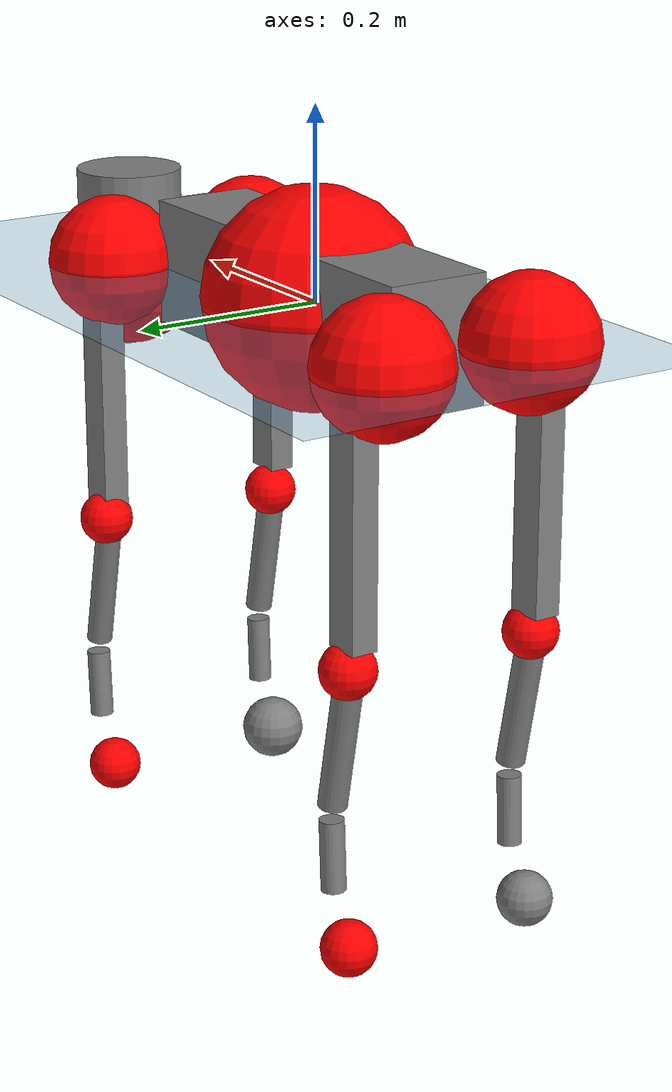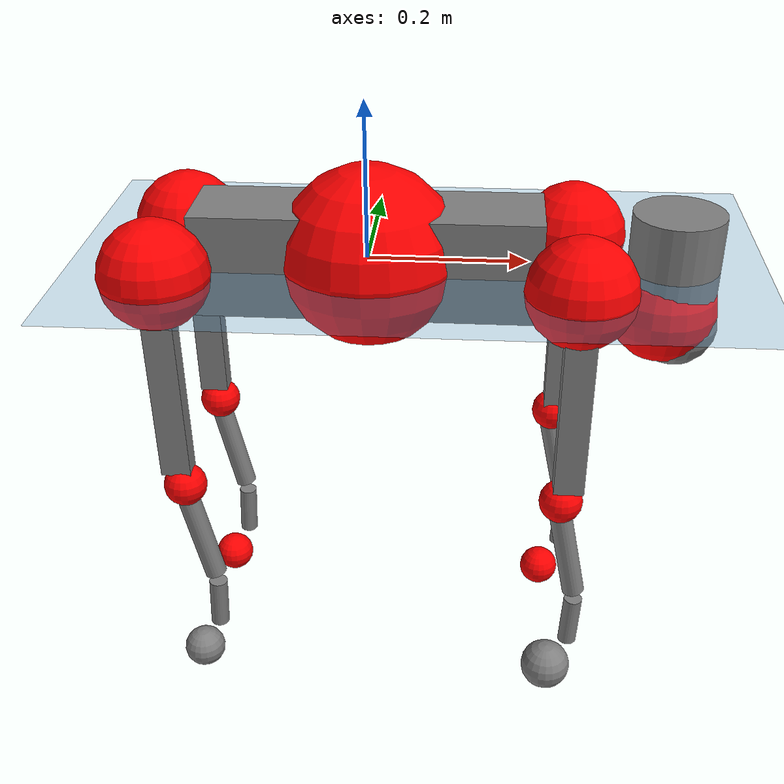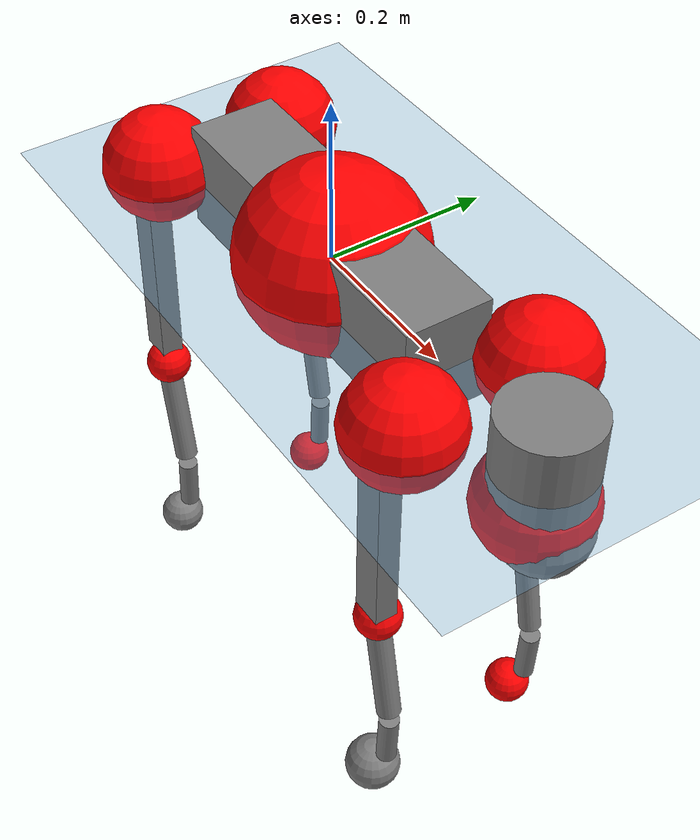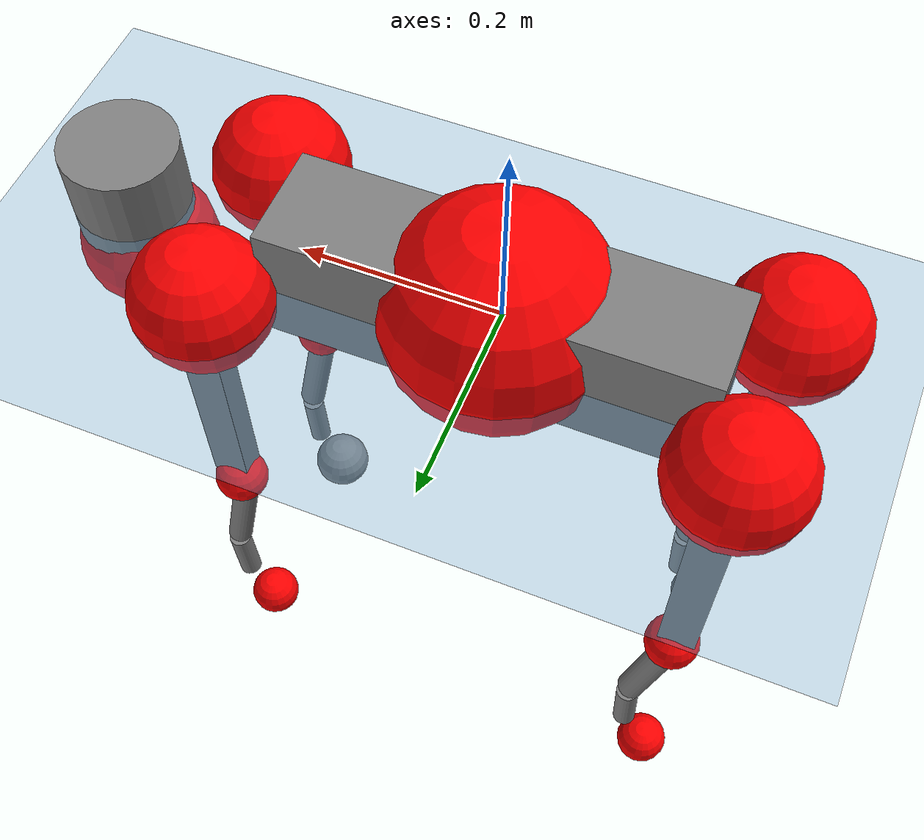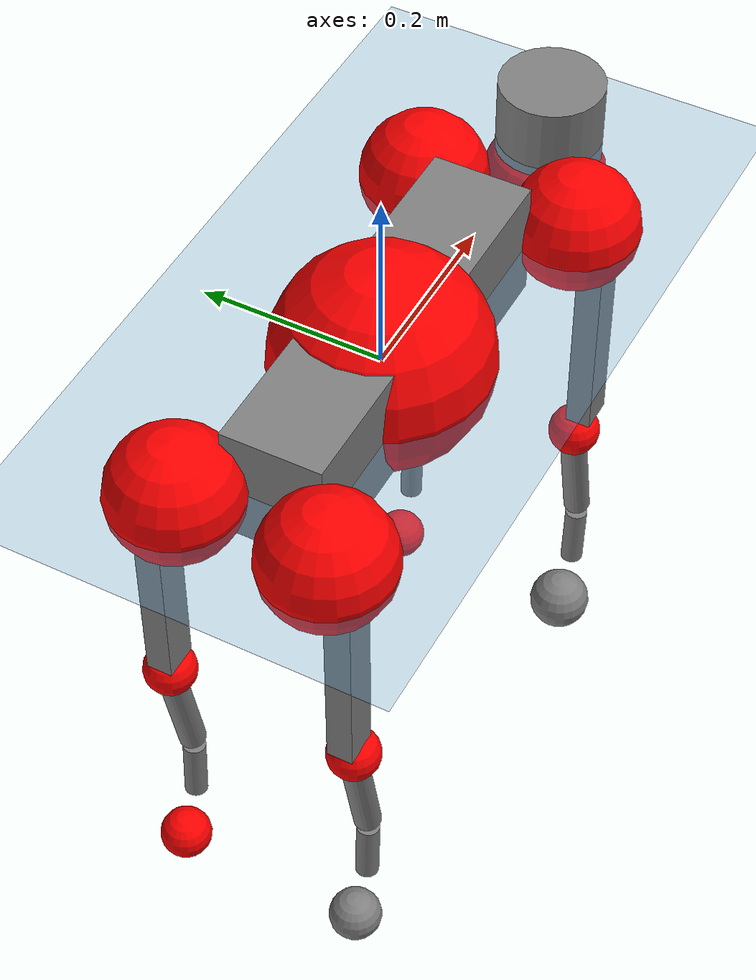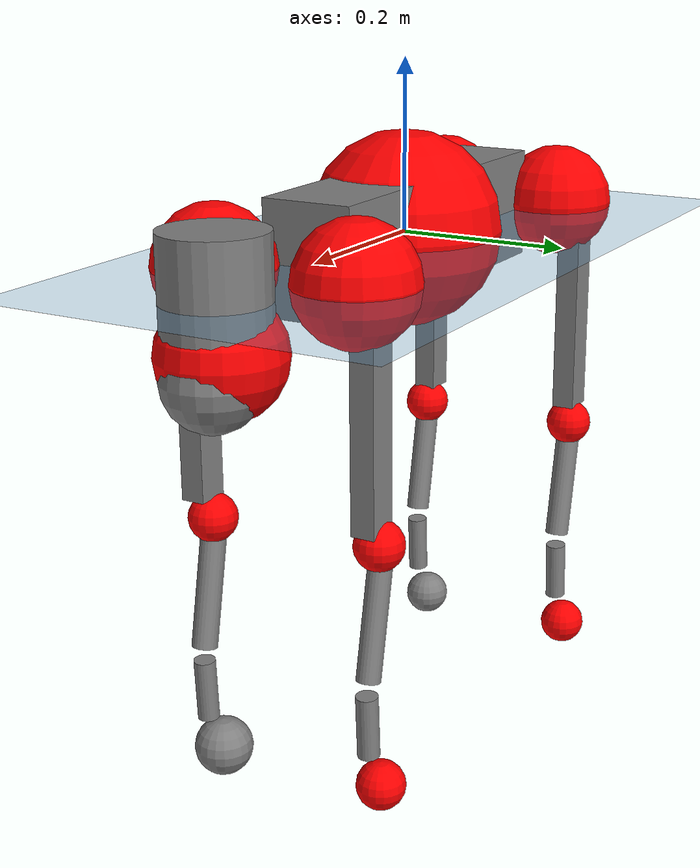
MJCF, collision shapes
<mujoco model="go2">
  <compiler angle="radian" assetdir="assets" balanceinertia="true" inertiafromgeom="false"/>

  <option timestep="0.005" density="1.2" viscosity="2e-05"/>

  <size nkey="1"/>

  <visual>
    <quality shadowsize="8192"/>
    <map shadowclip="0.5"/>
  </visual>

  <default>
    <default class="/">
      <geom contype="0" conaffinity="0" group="1" solref="-1000 -80"/>
      <site size="0.01 0.005 0.005" group="5"/>
      <general forcelimited="true" biastype="affine" gainprm="20" biasprm="0 -20 -0.5"/>
      <default class="go2">
        <joint armature="0.01" damping="0.01" frictionloss="0.2"/>
        <geom condim="1" margin="0.001"/>
        <default class="visual">
          <geom type="mesh" group="2"/>
        </default>
        <default class="collision">
          <geom group="3"/>
          <default class="foot">
            <geom size="0.022 0 0" condim="6" priority="1" friction="0.8 0.02 0.01" solimp="0.015 1 0.022"/>
          </default>
        </default>
        <default class="reward_collision_sphere">
          <geom group="5" rgba="1 0 0 1"/>
        </default>
      </default>
    </default>
  </default>

  <asset>
    <texture type="skybox" colorspace="auto" name="//unnamed_texture_0" builtin="gradient" rgb1="0.95 0.95 0.95" rgb2="0.95 0.95 0.95" width="100" height="600"/>
    <texture type="2d" colorspace="auto" name="texplane" builtin="checker" rgb1="0.345 0.575 0.748" rgb2="0.345 0.575 0.748" markrgb="1 1 1" width="512" height="512"/>
    <material name="MatPlane" class="/" texture="texplane" texuniform="true" texrepeat="2 2" specular="0.9"/>
    <material name="metal" class="/" rgba="0.9 0.95 0.95 1"/>
    <material name="black" class="/" rgba="0 0 0 1"/>
    <material name="white" class="/"/>
    <material name="gray" class="/" rgba="0.671705 0.692426 0.77427 1"/>
    <mesh name="base_0" class="/" file="base_0.obj"/>
    <mesh name="base_1" class="/" file="base_1.obj"/>
    <mesh name="base_2" class="/" file="base_2.obj"/>
    <mesh name="base_3" class="/" file="base_3.obj"/>
    <mesh name="base_4" class="/" file="base_4.obj"/>
    <mesh name="hip_0" class="/" file="hip_0.obj"/>
    <mesh name="hip_1" class="/" file="hip_1.obj"/>
    <mesh name="thigh_0" class="/" file="thigh_0.obj"/>
    <mesh name="thigh_1" class="/" file="thigh_1.obj"/>
    <mesh name="thigh_mirror_0" class="/" file="thigh_mirror_0.obj"/>
    <mesh name="thigh_mirror_1" class="/" file="thigh_mirror_1.obj"/>
    <mesh name="calf_0" class="/" file="calf_0.obj"/>
    <mesh name="calf_1" class="/" file="calf_1.obj"/>
    <mesh name="calf_mirror_0" class="/" file="calf_mirror_0.obj"/>
    <mesh name="calf_mirror_1" class="/" file="calf_mirror_1.obj"/>
    <mesh name="foot" class="/" file="foot.obj"/>
  </asset>

  <worldbody>
    <geom name="floor" class="/" size="100 100 0.125" type="plane" group="0" material="MatPlane"/>
    <light name="toplight_shadow" class="/" pos="0 0 5" dir="0.0990148 0.0990148 -0.990148" type="directional" ambient="0.04 0.04 0.04" diffuse="0.55 0.55 0.55" specular="0.12 0.12 0.12"/>
    <light name="toplight_fill" class="/" pos="0 0 5" dir="0.0990148 0.0990148 -0.990148" type="directional" castshadow="false" ambient="0.04 0.04 0.04" diffuse="0.3 0.3 0.3" specular="0.08 0.08 0.08"/>
    <body name="trunk" childclass="go2" pos="0.0020245 0.000337348 0.00436886" quat="1 -0.00076849 0.000532616 0.000261814">
      <inertial pos="0.0334622 0.00703848 -0.00872743" quat="-0.00211991 0.712545 -0.00186295 0.701621" mass="10.6454" diaginertia="0.39514 0.0199693 0.107351"/>
      <joint name="//unnamed_joint_0" type="free" armature="0" damping="0" frictionloss="0"/>
      <geom name="//unnamed_geom_1" class="visual" material="black" mesh="base_0"/>
      <geom name="//unnamed_geom_2" class="visual" material="black" mesh="base_1"/>
      <geom name="//unnamed_geom_3" class="visual" material="black" mesh="base_2"/>
      <geom name="//unnamed_geom_4" class="visual" material="white" mesh="base_3"/>
      <geom name="//unnamed_geom_5" class="visual" material="gray" mesh="base_4"/>
      <geom name="trunk_1" class="collision" size="0.216002 0.0536846 0.0654551" type="box"/>
      <geom name="trunk_2" class="collision" size="0.0574167 0.0516751" pos="0.378496 0 0.0137612" type="cylinder"/>
      <geom name="trunk_3" class="collision" size="0.0539717" pos="0.389121 0 -0.0825674"/>
      <geom name="//unnamed_geom_9" class="reward_collision_sphere" size="0.114833"/>
      <geom name="//unnamed_geom_10" class="reward_collision_sphere" size="0.0689001" pos="0.371856 0 -0.0619256"/>
      <site name="imu" pos="0.0114007 -0.00882754 0.0235456" size="0.0114833"/>
      <camera name="track" pos="0 -1.48165 0" quat="0.707107 0.707107 0 0" mode="trackcom"/>
      <camera name="ego_camera" pos="0.414354 0 0.0619256" quat="-0.5 -0.5 0.5 0.5"/>
      <body name="FL_hip" pos="0.258216 0.0352273 -0.00282431" quat="0.999999 -0.000409364 0.000964789 -0.000740117">
        <inertial pos="-0.0143338 0.00369798 -0.00276667" quat="0.486962 0.493499 0.513293 0.505823" mass="1.09645" diaginertia="0.00391785 0.000128059 0.00230887"/>
        <joint name="FL_hip_joint" pos="0 0 0" axis="0.999677 0.0184908 -0.0174402" range="-1.09606 0.992671" armature="0.00676706" damping="0.0489113" frictionloss="0.213631"/>
        <geom name="//unnamed_geom_11" class="visual" material="metal" mesh="hip_0"/>
        <geom name="//unnamed_geom_12" class="visual" material="gray" mesh="hip_1"/>
        <geom name="//unnamed_geom_13" class="collision" size="0.0528234 0.0229667" pos="0 0.0592658 0" quat="0.707107 0.707107 0 0" type="cylinder"/>
        <geom name="//unnamed_geom_14" class="reward_collision_sphere" size="0.0689001" pos="0 0.0518576 0"/>
        <body name="FL_thigh" pos="-0.0013156 0.0670432 -0.000118247" quat="0.999998 -0.000286014 -0.000928763 0.00149573">
          <inertial pos="-0.00620739 -0.01696 -0.0524433" quat="0.829611 0.086325 -0.0210374 0.551227" mass="1.71321" diaginertia="0.027566 0.00133969 0.00436642"/>
          <joint name="FL_thigh_joint" pos="0 0 0" axis="-0.013627 0.999042 0.0415881" stiffness="0.00205159" range="-1.58362 3.52257" armature="0.0123034" damping="0.00924012" frictionloss="0.309351"/>
          <geom name="//unnamed_geom_15" class="visual" material="metal" mesh="thigh_0"/>
          <geom name="//unnamed_geom_16" class="visual" material="gray" mesh="thigh_1"/>
          <geom name="//unnamed_geom_17" class="collision" size="0.122298 0.0140671 0.0195217" pos="0 0 -0.146557" quat="0.707107 0 0.707107 0" type="box"/>
          <body name="FL_calf" pos="-0.00590519 0.00615344 -0.284083" quat="0.999996 -6.09997e-05 -0.000345775 0.00292629">
            <inertial pos="0.00748622 -0.000440795 -0.195206" quat="0.712365 0.00325186 -0.00467521 0.701786" mass="0.368549" diaginertia="0.00634799 0.000329134 0.000267337"/>
            <joint name="FL_calf_joint" pos="0 0 0" axis="-0.0753935 0.996557 0.0344836" range="-2.6437 -0.855376" armature="0.0103397" damping="0.0400557" frictionloss="0.188207"/>
            <geom name="//unnamed_geom_18" class="visual" material="gray" mesh="calf_0"/>
            <geom name="//unnamed_geom_19" class="visual" material="black" mesh="calf_1"/>
            <geom name="FL_calf0" class="collision" size="0.01378 0.0689001" pos="0.0106245 0 -0.0825674" quat="0.994493 0 -0.104807 0" type="cylinder"/>
            <geom name="//unnamed_geom_21" class="collision" size="0.0126317 0.0373209" pos="0.0265611 0 -0.203666" quat="0.999688 0 0.0249974 0" type="cylinder"/>
            <geom name="//unnamed_geom_22" class="visual" pos="0 0 -0.293114" quat="1 0 0 0" material="black" mesh="foot"/>
            <geom name="FL_foot" class="foot" size="0.021228" pos="-0.00265611 0 -0.293114"/>
            <geom name="//unnamed_geom_24" class="reward_collision_sphere" size="0.0287084"/>
            <geom name="//unnamed_geom_25" class="reward_collision_sphere" size="0.0287084" pos="-0.00265611 0 -0.293114"/>
            <site name="FL_foot" class="foot" pos="-0.00265611 0 -0.293114" size="0.0114833"/>
          </body>
        </body>
      </body>
      <body name="FR_hip" pos="0.260626 -0.0339566 -0.00301502" quat="1 1.48626e-05 -2.15884e-05 -4.45274e-05">
        <inertial pos="-0.0139585 -0.0031217 0.00168773" quat="0.494297 0.509923 0.500056 0.495573" mass="0.973367" diaginertia="0.00355734 0.000122582 0.00224708"/>
        <joint name="FR_hip_joint" pos="0 0 0" axis="0.999986 0.00454494 0.00282742" stiffness="0.00238518" range="-0.900566 1.07862" armature="0.0151869" damping="0" frictionloss="0.310802"/>
        <geom name="//unnamed_geom_26" class="visual" pos="0 -5.53448e-09 -2.37385e-07" quat="4.63268e-05 1 0 0" material="metal" mesh="hip_0"/>
        <geom name="//unnamed_geom_27" class="visual" pos="0 -8.97206e-09 5.87145e-07" quat="4.63268e-05 1 0 0" material="gray" mesh="hip_1"/>
        <geom name="//unnamed_geom_28" class="collision" size="0.0528234 0.0229667" pos="0 -0.0592658 0" quat="0.707107 0.707107 0 0" type="cylinder"/>
        <geom name="//unnamed_geom_29" class="reward_collision_sphere" size="0.0689001" pos="0 -0.0518576 0"/>
        <body name="FR_thigh" pos="0.00141464 -0.07871 0.00234658" quat="1 -6.46513e-05 -9.65121e-05 0.000247824">
          <inertial pos="-0.00522137 0.0181649 -0.0470807" quat="0.578477 -0.0253897 0.0840361 0.810961" mass="2.04496" diaginertia="0.0268522 0.0013258 0.0045191"/>
          <joint name="FR_thigh_joint" pos="0 0 0" axis="-0.0255121 -0.999621 -0.0103464" stiffness="0.0137352" range="-3.66845 1.49058" armature="0.0114877" damping="0.0326972" frictionloss="0.114017"/>
          <geom name="//unnamed_geom_30" class="visual" material="metal" mesh="thigh_mirror_0"/>
          <geom name="//unnamed_geom_31" class="visual" material="gray" mesh="thigh_mirror_1"/>
          <geom name="//unnamed_geom_32" class="collision" size="0.122298 0.0140671 0.0195217" pos="0 0 -0.146557" quat="0.707107 0 0.707107 0" type="box"/>
          <body name="FR_calf" pos="-0.00695254 0.00787024 -0.294324" quat="1 0.000823324 -0.000243427 0.000347698">
            <inertial pos="0.00788166 -0.00136007 -0.202352" quat="0.703692 -0.0106058 0.0153107 0.710261" mass="0.360449" diaginertia="0.00687997 0.000352476 0.000270684"/>
            <joint name="FR_calf_joint" pos="0 0 0" axis="0.0122562 -0.999892 -0.00810164" stiffness="0.0060684" range="0.90079 2.64915" armature="0.0115454" damping="0.0139773" frictionloss="0.326805"/>
            <geom name="//unnamed_geom_33" class="visual" material="gray" mesh="calf_mirror_0"/>
            <geom name="//unnamed_geom_34" class="visual" material="black" mesh="calf_mirror_1"/>
            <geom name="FR_calf0" class="collision" size="0.0149283 0.0689001" pos="0.0132806 0 -0.0825674" quat="0.995004 0 -0.0998334 0" type="cylinder"/>
            <geom name="//unnamed_geom_36" class="collision" size="0.0126317 0.0373209" pos="0.0265611 0 -0.203666" quat="0.999688 0 0.0249974 0" type="cylinder"/>
            <geom name="//unnamed_geom_37" class="visual" pos="0 0 -0.293114" quat="1 0 0 0" material="black" mesh="foot"/>
            <geom name="FR_foot" class="foot" size="0.03473" pos="-0.00265611 0 -0.293114"/>
            <geom name="//unnamed_geom_39" class="reward_collision_sphere" size="0.0287084"/>
            <geom name="//unnamed_geom_40" class="reward_collision_sphere" size="0.0287084" pos="-0.00265611 0 -0.293114"/>
            <site name="FR_foot" class="foot" pos="-0.00265611 0 -0.293114" size="0.0114833"/>
          </body>
        </body>
      </body>
      <body name="RL_hip" pos="-0.248062 0.0330803 0.000933074" quat="1 -0.00015353 2.00629e-06 -0.000156794">
        <inertial pos="0.00551391 -0.00602777 0.00235019" quat="0.497543 0.511245 0.490188 0.500795" mass="1.03905" diaginertia="0.00396564 0.00012823 0.00278053"/>
        <joint name="RL_hip_joint" pos="0 0 0" axis="-0.999997 0.000796702 0.0022003" stiffness="0.0034169" range="-1.06091 1.24817" armature="0.0159832" damping="0.0213172" frictionloss="0.208312"/>
        <geom name="//unnamed_geom_41" class="visual" pos="4.18744e-10 0 8.20836e-08" quat="4.63268e-05 0 1 0" material="metal" mesh="hip_0"/>
        <geom name="//unnamed_geom_42" class="visual" pos="6.78835e-10 0 7.27965e-08" quat="4.63268e-05 0 1 0" material="gray" mesh="hip_1"/>
        <geom name="//unnamed_geom_43" class="collision" size="0.0528234 0.0229667" pos="0 0.0592658 0" quat="0.707107 0.707107 0 0" type="cylinder"/>
        <geom name="//unnamed_geom_44" class="reward_collision_sphere" size="0.0689001" pos="0 0.0518576 0"/>
        <body name="RL_thigh" pos="0.00368468 0.0805799 -0.000582509" quat="1 4.37101e-05 3.15171e-05 -2.51271e-05">
          <inertial pos="-0.00491853 -0.0223686 -0.0466274" quat="0.827497 0.0791015 -0.0129145 0.55572" mass="1.75363" diaginertia="0.0247696 0.00135675 0.00434058"/>
          <joint name="RL_thigh_joint" pos="0 0 0" axis="-0.0237739 0.999498 0.0209544" range="-0.497668 4.49448" armature="0.0127505" damping="0.0171942" frictionloss="0.224066"/>
          <geom name="//unnamed_geom_45" class="visual" material="metal" mesh="thigh_0"/>
          <geom name="//unnamed_geom_46" class="visual" material="gray" mesh="thigh_1"/>
          <geom name="//unnamed_geom_47" class="collision" size="0.122298 0.0140671 0.0195217" pos="0 0 -0.146557" quat="0.707107 0 0.707107 0" type="box"/>
          <body name="RL_calf" pos="0.00377944 0.00300699 -0.292375" quat="1 -5.24702e-07 0.000534009 -3.62462e-05">
            <inertial pos="0.00848604 -0.000175036 -0.196777" quat="0.730679 -0.00650678 -0.0432799 0.681317" mass="0.369201" diaginertia="0.0063571 0.00033664 0.000294371"/>
            <joint name="RL_calf_joint" pos="0 0 0" axis="-0.0225292 0.999686 -0.0109276" stiffness="0.00711" range="-2.72254 -0.82879" armature="0.014266" damping="0" frictionloss="0.18517"/>
            <geom name="//unnamed_geom_48" class="visual" material="gray" mesh="calf_0"/>
            <geom name="//unnamed_geom_49" class="visual" material="black" mesh="calf_1"/>
            <geom name="RL_calf0" class="collision" size="0.0149283 0.0689001" pos="0.0132806 0 -0.0825674" quat="0.995004 0 -0.0998334 0" type="cylinder"/>
            <geom name="//unnamed_geom_51" class="collision" size="0.0126317 0.0373209" pos="0.0265611 0 -0.203666" quat="0.999688 0 0.0249974 0" type="cylinder"/>
            <geom name="//unnamed_geom_52" class="visual" pos="0 0 -0.293114" quat="1 0 0 0" material="black" mesh="foot"/>
            <geom name="RL_foot" class="foot" size="0.0155709" pos="-0.00265611 0 -0.293114"/>
            <geom name="//unnamed_geom_54" class="reward_collision_sphere" size="0.0287084"/>
            <geom name="//unnamed_geom_55" class="reward_collision_sphere" size="0.0287084" pos="-0.00265611 0 -0.293114"/>
            <site name="RL_foot" class="foot" pos="-0.00265611 0 -0.293114" size="0.0114833"/>
          </body>
        </body>
      </body>
      <body name="RR_hip" pos="-0.25403 -0.0269922 0.00180636" quat="0.999996 0.000781357 1.53847e-05 0.00255615">
        <inertial pos="0.0148622 -0.00284108 -0.00671786" quat="0.49795 0.498617 0.497898 0.505494" mass="1.04742" diaginertia="0.00377965 0.000137422 0.00269118"/>
        <joint name="RR_hip_joint" pos="0 0 0" axis="-0.999998 0.000228602 -0.00206031" stiffness="0.0105446" range="-0.921992 0.87033" armature="0.0118885" damping="0.0310551" frictionloss="0.231643"/>
        <geom name="//unnamed_geom_56" class="visual" pos="-4.39075e-10 -5.53448e-09 3.19469e-07" quat="2.14617e-09 4.63268e-05 4.63268e-05 -1" material="metal" mesh="hip_0"/>
        <geom name="//unnamed_geom_57" class="visual" pos="-6.2855e-10 -8.97206e-09 -5.14349e-07" quat="2.14617e-09 4.63268e-05 4.63268e-05 -1" material="gray" mesh="hip_1"/>
        <geom name="//unnamed_geom_58" class="collision" size="0.0528234 0.0229667" pos="0 -0.0592658 0" quat="0.707107 0.707107 0 0" type="cylinder"/>
        <geom name="//unnamed_geom_59" class="reward_collision_sphere" size="0.0689001" pos="0 -0.0518576 0"/>
        <body name="RR_thigh" pos="0.00307408 -0.0687641 -0.00772304" quat="1 -0.000522936 0.000185173 -0.000564961">
          <inertial pos="-0.00952463 0.0155826 -0.0435962" quat="0.551942 -0.0180898 0.0837128 0.829473" mass="2.16492" diaginertia="0.0297627 0.00149333 0.00492108"/>
          <joint name="RR_thigh_joint" pos="0 0 0" axis="-0.0018653 -0.999575 -0.0290983" range="-4.50369 0.522679" armature="0.0120783" damping="0.00620841" frictionloss="0.235546"/>
          <geom name="//unnamed_geom_60" class="visual" material="metal" mesh="thigh_mirror_0"/>
          <geom name="//unnamed_geom_61" class="visual" material="gray" mesh="thigh_mirror_1"/>
          <geom name="//unnamed_geom_62" class="collision" size="0.122298 0.0140671 0.0195217" pos="0 0 -0.146557" quat="0.707107 0 0.707107 0" type="box"/>
          <body name="RR_calf" pos="0.00741443 -0.00122573 -0.291149" quat="0.999999 -0.000101294 -0.000572844 -0.000847886">
            <inertial pos="0.00926678 0.00115227 -0.192833" quat="0.718518 -0.0271929 0.000971638 0.694976" mass="0.383723" diaginertia="0.00653471 0.000309556 0.000275197"/>
            <joint name="RR_calf_joint" pos="0 0 0" axis="-0.0207513 -0.99977 0.00549653" range="0.815206 2.72421" armature="0.0163859" damping="0.0112257" frictionloss="0.227591"/>
            <geom name="//unnamed_geom_63" class="visual" material="gray" mesh="calf_mirror_0"/>
            <geom name="//unnamed_geom_64" class="visual" material="black" mesh="calf_mirror_1"/>
            <geom name="RR_calf0" class="collision" size="0.0149283 0.0689001" pos="0.0132806 0 -0.0825674" quat="0.995004 0 -0.0998334 0" type="cylinder"/>
            <geom name="//unnamed_geom_66" class="collision" size="0.0126317 0.0373209" pos="0.0265611 0 -0.203666" quat="0.999688 0 0.0249974 0" type="cylinder"/>
            <geom name="//unnamed_geom_67" class="visual" pos="0 0 -0.293114" quat="1 0 0 0" material="black" mesh="foot"/>
            <geom name="RR_foot" class="foot" size="0.0288855" pos="-0.00265611 0 -0.293114"/>
            <geom name="//unnamed_geom_69" class="reward_collision_sphere" size="0.0287084"/>
            <geom name="//unnamed_geom_70" class="reward_collision_sphere" size="0.0287084" pos="-0.00265611 0 -0.293114"/>
            <site name="RR_foot" class="foot" pos="-0.00265611 0 -0.293114" size="0.0114833"/>
          </body>
        </body>
      </body>
    </body>
  </worldbody>

  <contact>
    <pair class="/" geom1="floor" geom2="FL_foot" name="//unnamed_contact_0"/>
    <pair class="/" geom1="floor" geom2="FR_foot" name="//unnamed_contact_1"/>
    <pair class="/" geom1="floor" geom2="RL_foot" name="//unnamed_contact_2"/>
    <pair class="/" geom1="floor" geom2="RR_foot" name="//unnamed_contact_3"/>
  </contact>

  <actuator>
    <general name="FL_hip" class="/" joint="FL_hip_joint" forcerange="-25.6064 25.6064" gainprm="23.698" biasprm="0 -23.698 -0.56178"/>
    <general name="FL_thigh" class="/" joint="FL_thigh_joint" forcerange="-30.1896 30.1896" gainprm="23.698" biasprm="0 -23.698 -0.56178"/>
    <general name="FL_calf" class="/" joint="FL_calf_joint" forcerange="-50.7712 50.7712" gainprm="23.698" biasprm="0 -23.698 -0.56178"/>
    <general name="FR_hip" class="/" joint="FR_hip_joint" forcerange="-30.7401 30.7401" gainprm="23.698" biasprm="0 -23.698 -0.56178"/>
    <general name="FR_thigh" class="/" joint="FR_thigh_joint" forcerange="-25.4619 25.4619" gainprm="23.698" biasprm="0 -23.698 -0.56178"/>
    <general name="FR_calf" class="/" joint="FR_calf_joint" forcerange="-65.2752 65.2752" gainprm="23.698" biasprm="0 -23.698 -0.56178"/>
    <general name="RL_hip" class="/" joint="RL_hip_joint" forcerange="-27.1847 27.1847" gainprm="23.698" biasprm="0 -23.698 -0.56178"/>
    <general name="RL_thigh" class="/" joint="RL_thigh_joint" forcerange="-34.3308 34.3308" gainprm="23.698" biasprm="0 -23.698 -0.56178"/>
    <general name="RL_calf" class="/" joint="RL_calf_joint" forcerange="-50.5866 50.5866" gainprm="23.698" biasprm="0 -23.698 -0.56178"/>
    <general name="RR_hip" class="/" joint="RR_hip_joint" forcerange="-27.4653 27.4653" gainprm="23.698" biasprm="0 -23.698 -0.56178"/>
    <general name="RR_thigh" class="/" joint="RR_thigh_joint" forcerange="-35.7155 35.7155" gainprm="23.698" biasprm="0 -23.698 -0.56178"/>
    <general name="RR_calf" class="/" joint="RR_calf_joint" forcerange="-40.0884 40.0884" gainprm="23.698" biasprm="0 -23.698 -0.56178"/>
  </actuator>

  <sensor>
    <gyro site="imu" name="imu_angular_velocity"/>
    <velocimeter site="imu" name="imu_linear_velocity"/>
    <framelinvel objtype="site" objname="FL_foot" name="FL_foot_global_linear_velocity"/>
    <framelinvel objtype="site" objname="FR_foot" name="FR_foot_global_linear_velocity"/>
    <framelinvel objtype="site" objname="RL_foot" name="RL_foot_global_linear_velocity"/>
    <framelinvel objtype="site" objname="RR_foot" name="RR_foot_global_linear_velocity"/>
  </sensor>

  <keyframe>
    <key name="home" qpos="0 0 0.325 1 0 0 0 0.1 0.8 -1.5 -0.1 -0.8 1.5 -0.1 0.8 -1.5 0.1 -0.8 1.5"/>
  </keyframe>
</mujoco>
